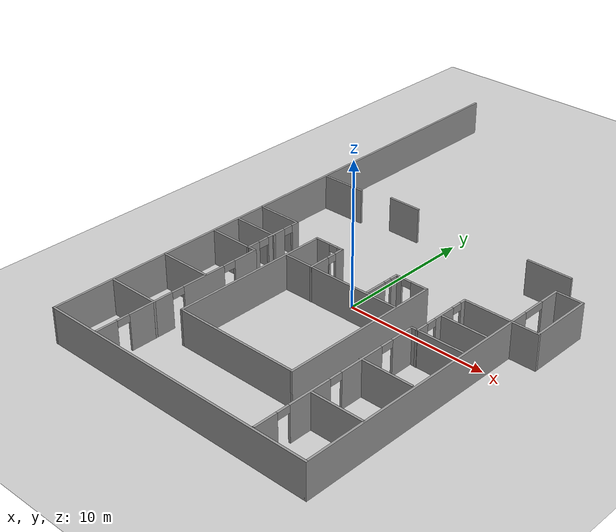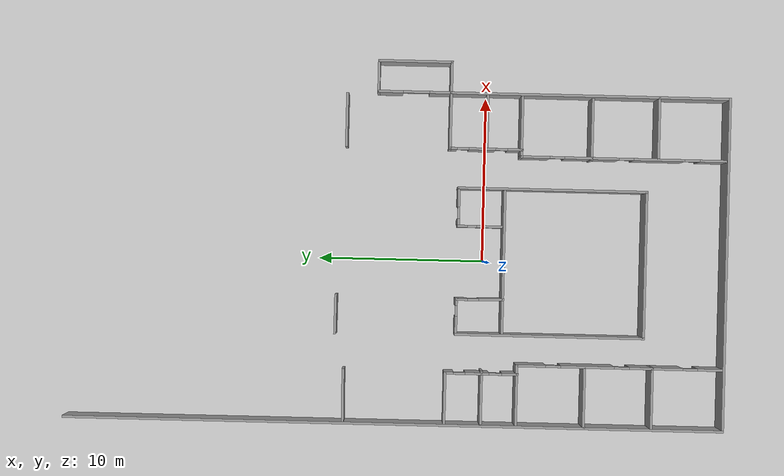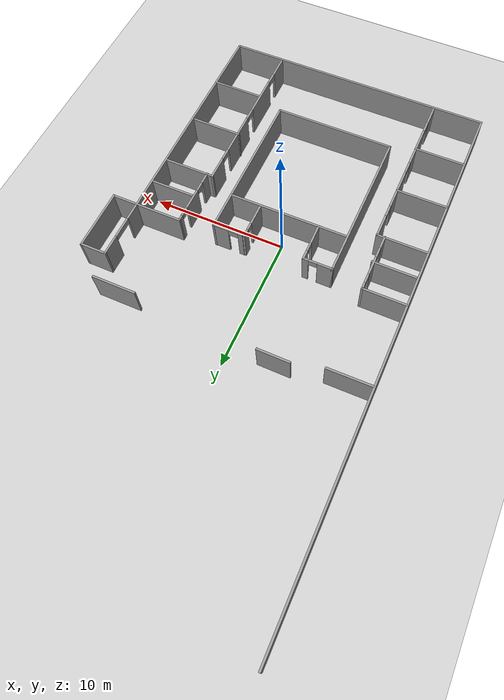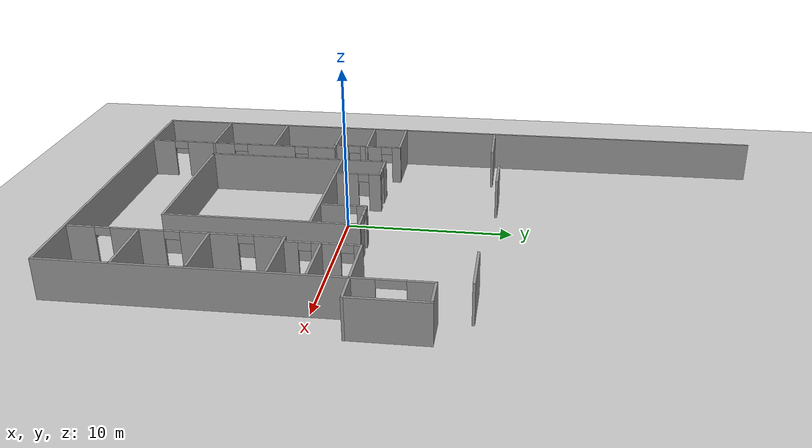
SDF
<sdf version="1.7">
 <world name="default">
  <model name="ground_plane">
   <static>1</static>
   <link name="link">
    <collision name="collision">
     <geometry><plane><normal>0 0 1</normal><size>100 100</size></plane></geometry>
     <surface><friction><ode><mu>100</mu><mu2>50</mu2></ode></friction></surface>
    </collision>
    <visual name="visual">
     <cast_shadows>0</cast_shadows>
     <geometry><plane><normal>0 0 1</normal><size>100 100</size></plane></geometry>
     <material>
      <script><uri>file://media/materials/scripts/gazebo.material</uri><name>Gazebo/Grey</name></script>
     </material>
    </visual>
   </link>
  </model>
  <model name="hospital_world">
   <pose>1.05255 5.28475 0 0 -0 0</pose>
   <link name="Wall_13">
    <collision name="Wall_13_Collision">
     <geometry><box><size>40 0.15 2.5</size></box></geometry>
     <pose>0 0 1.25 0 -0 0</pose>
    </collision>
    <visual name="Wall_13_Visual">
     <pose>0 0 1.25 0 -0 0</pose>
     <geometry><box><size>40 0.15 2.5</size></box></geometry>
     <material>
      <script><uri>file://media/materials/scripts/gazebo.material</uri><name>Gazebo/Grey</name></script>
      <ambient>1 1 1 1</ambient>
     </material>
     <meta><layer>0</layer></meta>
    </visual>
    <pose>-10.975 -0.021727 0 0 -0 -1.5708</pose>
   </link>
   <link name="Wall_14">
    <collision name="Wall_14_Collision">
     <geometry><box><size>20.25 0.15 2.5</size></box></geometry>
     <pose>0 0 1.25 0 -0 0</pose>
    </collision>
    <visual name="Wall_14_Visual">
     <pose>0 0 1.25 0 -0 0</pose>
     <geometry><box><size>20.25 0.15 2.5</size></box></geometry>
     <material>
      <script><uri>file://media/materials/scripts/gazebo.material</uri><name>Gazebo/Grey</name></script>
      <ambient>1 1 1 1</ambient>
     </material>
     <meta><layer>0</layer></meta>
    </visual>
    <pose>-0.924999 -19.9467 0 0 -0 0</pose>
   </link>
   <link name="Wall_140">
    <pose>-3.33273 -5.09193 0 0 -0 -1.55784</pose>
    <visual name="Wall_140_Visual_0">
     <pose>-1.10334 0 1.25 0 -0 0</pose>
     <geometry><box><size>0.735345 0.15 2.5</size></box></geometry>
     <material>
      <script><uri>file://media/materials/scripts/gazebo.material</uri><name>Gazebo/Grey</name></script>
      <ambient>1 1 1 1</ambient>
     </material>
     <meta><layer>0</layer></meta>
    </visual>
    <collision name="Wall_140_Collision_0">
     <geometry><box><size>0.735345 0.15 2.5</size></box></geometry>
     <pose>-1.10334 0 1.25 0 -0 0</pose>
    </collision>
    <visual name="Wall_140_Visual_1">
     <pose>0.701176 0 1.25 0 -0 0</pose>
     <geometry><box><size>1.53968 0.15 2.5</size></box></geometry>
     <material>
      <script><uri>file://media/materials/scripts/gazebo.material</uri><name>Gazebo/Grey</name></script>
      <ambient>1 1 1 1</ambient>
     </material>
     <meta><layer>0</layer></meta>
    </visual>
    <collision name="Wall_140_Collision_1">
     <geometry><box><size>1.53968 0.15 2.5</size></box></geometry>
     <pose>0.701176 0 1.25 0 -0 0</pose>
    </collision>
    <visual name="Wall_140_Visual_2">
     <pose>-0.402168 0 2.25 0 -0 0</pose>
     <geometry><box><size>0.667007 0.15 0.5</size></box></geometry>
     <material>
      <script><uri>file://media/materials/scripts/gazebo.material</uri><name>Gazebo/Grey</name></script>
      <ambient>1 1 1 1</ambient>
     </material>
     <meta><layer>0</layer></meta>
    </visual>
    <collision name="Wall_140_Collision_2">
     <geometry><box><size>0.667007 0.15 0.5</size></box></geometry>
     <pose>-0.402168 0 2.25 0 -0 0</pose>
    </collision>
   </link>
   <link name="Wall_142">
    <pose>1.08598 -5.01489 0 0 -0 -1.5708</pose>
    <visual name="Wall_142_Visual_0">
     <pose>-1.06401 0 1.25 0 -0 0</pose>
     <geometry><box><size>0.621972 0.15 2.5</size></box></geometry>
     <material>
      <script><uri>file://media/materials/scripts/gazebo.material</uri><name>Gazebo/Grey</name></script>
      <ambient>1 1 1 1</ambient>
     </material>
     <meta><layer>0</layer></meta>
    </visual>
    <collision name="Wall_142_Collision_0">
     <geometry><box><size>0.621972 0.15 2.5</size></box></geometry>
     <pose>-1.06401 0 1.25 0 -0 0</pose>
    </collision>
    <visual name="Wall_142_Visual_1">
     <pose>0.586521 0 1.25 0 -0 0</pose>
     <geometry><box><size>1.57696 0.15 2.5</size></box></geometry>
     <material>
      <script><uri>file://media/materials/scripts/gazebo.material</uri><name>Gazebo/Grey</name></script>
      <ambient>1 1 1 1</ambient>
     </material>
     <meta><layer>0</layer></meta>
    </visual>
    <collision name="Wall_142_Collision_1">
     <geometry><box><size>1.57696 0.15 2.5</size></box></geometry>
     <pose>0.586521 0 1.25 0 -0 0</pose>
    </collision>
    <visual name="Wall_142_Visual_2">
     <pose>-0.477493 0 2.25 0 -0 0</pose>
     <geometry><box><size>0.551071 0.15 0.5</size></box></geometry>
     <material>
      <script><uri>file://media/materials/scripts/gazebo.material</uri><name>Gazebo/Grey</name></script>
      <ambient>1 1 1 1</ambient>
     </material>
     <meta><layer>0</layer></meta>
    </visual>
    <collision name="Wall_142_Collision_2">
     <geometry><box><size>0.551071 0.15 0.5</size></box></geometry>
     <pose>-0.477493 0 2.25 0 -0 0</pose>
    </collision>
   </link>
   <link name="Wall_15">
    <collision name="Wall_15_Collision">
     <geometry><box><size>17 0.15 2.5</size></box></geometry>
     <pose>0 0 1.25 0 -0 0</pose>
    </collision>
    <visual name="Wall_15_Visual">
     <pose>0 0 1.25 0 -0 0</pose>
     <geometry><box><size>17 0.15 2.5</size></box></geometry>
     <material>
      <script><uri>file://media/materials/scripts/gazebo.material</uri><name>Gazebo/Grey</name></script>
      <ambient>1 1 1 1</ambient>
     </material>
     <meta><layer>0</layer></meta>
    </visual>
    <pose>9.125 -11.5217 0 0 -0 1.5708</pose>
   </link>
   <link name="Wall_150">
    <collision name="Wall_150_Collision">
     <geometry><box><size>2.4079 0.15 2.5</size></box></geometry>
     <pose>0 0 1.25 0 -0 0</pose>
    </collision>
    <visual name="Wall_150_Visual">
     <pose>0 0 1.25 0 -0 0</pose>
     <geometry><box><size>2.4079 0.15 2.5</size></box></geometry>
     <material>
      <script><uri>file://media/materials/scripts/gazebo.material</uri><name>Gazebo/Grey</name></script>
      <ambient>1 1 1 1</ambient>
     </material>
     <meta><layer>0</layer></meta>
    </visual>
    <pose>-4.4029 3.61271 0 0 -0 -0.004153</pose>
   </link>
   <link name="Wall_152">
    <collision name="Wall_152_Collision">
     <geometry><box><size>8.75 0.15 2.5</size></box></geometry>
     <pose>0 0 1.25 0 -0 0</pose>
    </collision>
    <visual name="Wall_152_Visual">
     <pose>0 0 1.25 0 -0 0</pose>
     <geometry><box><size>8.75 0.15 2.5</size></box></geometry>
     <material>
      <script><uri>file://media/materials/scripts/gazebo.material</uri><name>Gazebo/Grey</name></script>
      <ambient>1 1 1 1</ambient>
     </material>
     <meta><layer>0</layer></meta>
    </visual>
    <pose>-1.00117 -6.47614 0 0 -0 0</pose>
   </link>
   <link name="Wall_154">
    <pose>-4.40742 -3.68941 0 0 -0 0</pose>
    <visual name="Wall_154_Visual_0">
     <pose>-0.547357 0 1.25 0 -0 0</pose>
     <geometry><box><size>1.15529 0.15 2.5</size></box></geometry>
     <material>
      <script><uri>file://media/materials/scripts/gazebo.material</uri><name>Gazebo/Grey</name></script>
      <ambient>1 1 1 1</ambient>
     </material>
     <meta><layer>0</layer></meta>
    </visual>
    <collision name="Wall_154_Collision_0">
     <geometry><box><size>1.15529 0.15 2.5</size></box></geometry>
     <pose>-0.547357 0 1.25 0 -0 0</pose>
    </collision>
    <visual name="Wall_154_Visual_1">
     <pose>0.899702 0 1.25 0 -0 0</pose>
     <geometry><box><size>0.450596 0.15 2.5</size></box></geometry>
     <material>
      <script><uri>file://media/materials/scripts/gazebo.material</uri><name>Gazebo/Grey</name></script>
      <ambient>1 1 1 1</ambient>
     </material>
     <meta><layer>0</layer></meta>
    </visual>
    <collision name="Wall_154_Collision_1">
     <geometry><box><size>0.450596 0.15 2.5</size></box></geometry>
     <pose>0.899702 0 1.25 0 -0 0</pose>
    </collision>
    <visual name="Wall_154_Visual_2">
     <pose>0.352345 0 2.25 0 -0 0</pose>
     <geometry><box><size>0.644118 0.15 0.5</size></box></geometry>
     <material>
      <script><uri>file://media/materials/scripts/gazebo.material</uri><name>Gazebo/Grey</name></script>
      <ambient>1 1 1 1</ambient>
     </material>
     <meta><layer>0</layer></meta>
    </visual>
    <collision name="Wall_154_Collision_2">
     <geometry><box><size>0.644118 0.15 0.5</size></box></geometry>
     <pose>0.352345 0 2.25 0 -0 0</pose>
    </collision>
   </link>
   <link name="Wall_156">
    <pose>2.30006 -3.70371 0 0 -0 3.14159</pose>
    <visual name="Wall_156_Visual_0">
     <pose>-0.537944 0 1.25 0 -0 0</pose>
     <geometry><box><size>1.17411 0.15 2.5</size></box></geometry>
     <material>
      <script><uri>file://media/materials/scripts/gazebo.material</uri><name>Gazebo/Grey</name></script>
      <ambient>1 1 1 1</ambient>
     </material>
     <meta><layer>0</layer></meta>
    </visual>
    <collision name="Wall_156_Collision_0">
     <geometry><box><size>1.17411 0.15 2.5</size></box></geometry>
     <pose>-0.537944 0 1.25 0 -0 0</pose>
    </collision>
    <visual name="Wall_156_Visual_1">
     <pose>0.944008 0 1.25 0 -0 0</pose>
     <geometry><box><size>0.361984 0.15 2.5</size></box></geometry>
     <material>
      <script><uri>file://media/materials/scripts/gazebo.material</uri><name>Gazebo/Grey</name></script>
      <ambient>1 1 1 1</ambient>
     </material>
     <meta><layer>0</layer></meta>
    </visual>
    <collision name="Wall_156_Collision_1">
     <geometry><box><size>0.361984 0.15 2.5</size></box></geometry>
     <pose>0.944008 0 1.25 0 -0 0</pose>
    </collision>
    <visual name="Wall_156_Visual_2">
     <pose>0.406064 0 2.25 0 -0 0</pose>
     <geometry><box><size>0.713904 0.15 0.5</size></box></geometry>
     <material>
      <script><uri>file://media/materials/scripts/gazebo.material</uri><name>Gazebo/Grey</name></script>
      <ambient>1 1 1 1</ambient>
     </material>
     <meta><layer>0</layer></meta>
    </visual>
    <collision name="Wall_156_Collision_2">
     <geometry><box><size>0.713904 0.15 0.5</size></box></geometry>
     <pose>0.406064 0 2.25 0 -0 0</pose>
    </collision>
   </link>
   <link name="Wall_158">
    <pose>9.125 -0.896727 0 0 -0 -1.5708</pose>
    <visual name="Wall_158_Visual_0">
     <pose>-1.49805 0 1.25 0 -0 0</pose>
     <geometry><box><size>1.55389 0.15 2.5</size></box></geometry>
     <material>
      <script><uri>file://media/materials/scripts/gazebo.material</uri><name>Gazebo/Grey</name></script>
      <ambient>1 1 1 1</ambient>
     </material>
     <meta><layer>0</layer></meta>
    </visual>
    <collision name="Wall_158_Collision_0">
     <geometry><box><size>1.55389 0.15 2.5</size></box></geometry>
     <pose>-1.49805 0 1.25 0 -0 0</pose>
    </collision>
    <visual name="Wall_158_Visual_1">
     <pose>1.57587 0 1.25 0 -0 0</pose>
     <geometry><box><size>1.39825 0.15 2.5</size></box></geometry>
     <material>
      <script><uri>file://media/materials/scripts/gazebo.material</uri><name>Gazebo/Grey</name></script>
      <ambient>1 1 1 1</ambient>
     </material>
     <meta><layer>0</layer></meta>
    </visual>
    <collision name="Wall_158_Collision_1">
     <geometry><box><size>1.39825 0.15 2.5</size></box></geometry>
     <pose>1.57587 0 1.25 0 -0 0</pose>
    </collision>
    <visual name="Wall_158_Visual_2">
     <pose>0.07782 0 2.25 0 -0 0</pose>
     <geometry><box><size>1.59786 0.15 0.5</size></box></geometry>
     <material>
      <script><uri>file://media/materials/scripts/gazebo.material</uri><name>Gazebo/Grey</name></script>
      <ambient>1 1 1 1</ambient>
     </material>
     <meta><layer>0</layer></meta>
    </visual>
    <collision name="Wall_158_Collision_2">
     <geometry><box><size>1.59786 0.15 0.5</size></box></geometry>
     <pose>0.07782 0 2.25 0 -0 0</pose>
    </collision>
   </link>
   <link name="Wall_16">
    <collision name="Wall_16_Collision">
     <geometry><box><size>2 0.15 2.5</size></box></geometry>
     <pose>0 0 1.25 0 -0 0</pose>
    </collision>
    <visual name="Wall_16_Visual">
     <pose>0 0 1.25 0 -0 0</pose>
     <geometry><box><size>2 0.15 2.5</size></box></geometry>
     <material>
      <script><uri>file://media/materials/scripts/gazebo.material</uri><name>Gazebo/Grey</name></script>
      <ambient>1 1 1 1</ambient>
     </material>
     <meta><layer>0</layer></meta>
    </visual>
    <pose>10.05 -3.09673 0 0 -0 0</pose>
   </link>
   <link name="Wall_165">
    <collision name="Wall_165_Collision">
     <geometry><box><size>4.55 0.15 2.5</size></box></geometry>
     <pose>0 0 1.25 0 -0 0</pose>
    </collision>
    <visual name="Wall_165_Visual">
     <pose>0 0 1.25 0 -0 0</pose>
     <geometry><box><size>4.55 0.15 2.5</size></box></geometry>
     <material>
      <script><uri>file://media/materials/scripts/gazebo.material</uri><name>Gazebo/Grey</name></script>
      <ambient>1 1 1 1</ambient>
     </material>
     <meta><layer>0</layer></meta>
    </visual>
    <pose>10.975 -0.896727 0 0 -0 -1.5708</pose>
   </link>
   <link name="Wall_186">
    <collision name="Wall_186_Collision">
     <geometry><box><size>11.5 0.15 2.5</size></box></geometry>
     <pose>0 0 1.25 0 -0 0</pose>
    </collision>
    <visual name="Wall_186_Visual">
     <pose>0 0 1.25 0 -0 0</pose>
     <geometry><box><size>11.5 0.15 2.5</size></box></geometry>
     <material>
      <script><uri>file://media/materials/scripts/gazebo.material</uri><name>Gazebo/Grey</name></script>
      <ambient>1 1 1 1</ambient>
     </material>
     <meta><layer>0</layer></meta>
    </visual>
    <pose>-5.45742 -9.36441 0 0 -0 -1.5708</pose>
   </link>
   <link name="Wall_187">
    <collision name="Wall_187_Collision">
     <geometry><box><size>9 0.15 2.5</size></box></geometry>
     <pose>0 0 1.25 0 -0 0</pose>
    </collision>
    <visual name="Wall_187_Visual">
     <pose>0 0 1.25 0 -0 0</pose>
     <geometry><box><size>9 0.15 2.5</size></box></geometry>
     <material>
      <script><uri>file://media/materials/scripts/gazebo.material</uri><name>Gazebo/Grey</name></script>
      <ambient>1 1 1 1</ambient>
     </material>
     <meta><layer>0</layer></meta>
    </visual>
    <pose>-1.03242 -15.0394 0 0 -0 0</pose>
   </link>
   <link name="Wall_196">
    <collision name="Wall_196_Collision">
     <geometry><box><size>11.5 0.15 2.5</size></box></geometry>
     <pose>0 0 1.25 0 -0 0</pose>
    </collision>
    <visual name="Wall_196_Visual">
     <pose>0 0 1.25 0 -0 0</pose>
     <geometry><box><size>11.5 0.15 2.5</size></box></geometry>
     <material>
      <script><uri>file://media/materials/scripts/gazebo.material</uri><name>Gazebo/Grey</name></script>
      <ambient>1 1 1 1</ambient>
     </material>
     <meta><layer>0</layer></meta>
    </visual>
    <pose>3.39258 -9.36441 0 0 -0 1.5708</pose>
   </link>
   <link name="Wall_22">
    <collision name="Wall_22_Collision">
     <geometry><box><size>3.2502 0.15 2.5</size></box></geometry>
     <pose>0 0 1.25 0 -0 0</pose>
    </collision>
    <visual name="Wall_22_Visual">
     <pose>0 0 1.25 0 -0 0</pose>
     <geometry><box><size>3.2502 0.15 2.5</size></box></geometry>
     <material>
      <script><uri>file://media/materials/scripts/gazebo.material</uri><name>Gazebo/Grey</name></script>
      <ambient>1 1 1 1</ambient>
     </material>
     <meta><layer>0</layer></meta>
    </visual>
    <pose>-9.31807 3.046 0 0 -0 -3.13031</pose>
   </link>
   <link name="Wall_40">
    <collision name="Wall_40_Collision">
     <geometry><box><size>3.25 0.15 2.5</size></box></geometry>
     <pose>0 0 1.25 0 -0 0</pose>
    </collision>
    <visual name="Wall_40_Visual">
     <pose>0 0 1.25 0 -0 0</pose>
     <geometry><box><size>3.25 0.15 2.5</size></box></geometry>
     <material>
      <script><uri>file://media/materials/scripts/gazebo.material</uri><name>Gazebo/Grey</name></script>
      <ambient>1 1 1 1</ambient>
     </material>
     <meta><layer>0</layer></meta>
    </visual>
    <pose>7.37614 3.1742 0 0 -0 0</pose>
   </link>
   <link name="Wall_44">
    <collision name="Wall_44_Collision">
     <geometry><box><size>3.25 0.15 2.5</size></box></geometry>
     <pose>0 0 1.25 0 -0 0</pose>
    </collision>
    <visual name="Wall_44_Visual">
     <pose>0 0 1.25 0 -0 0</pose>
     <geometry><box><size>3.25 0.15 2.5</size></box></geometry>
     <material>
      <script><uri>file://media/materials/scripts/gazebo.material</uri><name>Gazebo/Grey</name></script>
      <ambient>1 1 1 1</ambient>
     </material>
     <meta><layer>0</layer></meta>
    </visual>
    <pose>-9.36509 -3.10623 0 0 -0 0</pose>
   </link>
   <link name="Wall_45">
    <pose>-7.81509 -5.28123 0 0 -0 -1.5708</pose>
    <visual name="Wall_45_Visual_0">
     <pose>-1.96621 0 1.25 0 -0 0</pose>
     <geometry><box><size>0.567587 0.15 2.5</size></box></geometry>
     <material>
      <script><uri>file://media/materials/scripts/gazebo.material</uri><name>Gazebo/Grey</name></script>
      <ambient>1 1 1 1</ambient>
     </material>
     <meta><layer>0</layer></meta>
    </visual>
    <collision name="Wall_45_Collision_0">
     <geometry><box><size>0.567587 0.15 2.5</size></box></geometry>
     <pose>-1.96621 0 1.25 0 -0 0</pose>
    </collision>
    <visual name="Wall_45_Visual_1">
     <pose>-0.247647 0 1.25 0 -0 0</pose>
     <geometry><box><size>1.43454 0.15 2.5</size></box></geometry>
     <material>
      <script><uri>file://media/materials/scripts/gazebo.material</uri><name>Gazebo/Grey</name></script>
      <ambient>1 1 1 1</ambient>
     </material>
     <meta><layer>0</layer></meta>
    </visual>
    <collision name="Wall_45_Collision_1">
     <geometry><box><size>1.43454 0.15 2.5</size></box></geometry>
     <pose>-0.247647 0 1.25 0 -0 0</pose>
    </collision>
    <visual name="Wall_45_Visual_2">
     <pose>1.74898 0 1.25 0 -0 0</pose>
     <geometry><box><size>1.00205 0.15 2.5</size></box></geometry>
     <material>
      <script><uri>file://media/materials/scripts/gazebo.material</uri><name>Gazebo/Grey</name></script>
      <ambient>1 1 1 1</ambient>
     </material>
     <meta><layer>0</layer></meta>
    </visual>
    <collision name="Wall_45_Collision_2">
     <geometry><box><size>1.00205 0.15 2.5</size></box></geometry>
     <pose>1.74898 0 1.25 0 -0 0</pose>
    </collision>
    <visual name="Wall_45_Visual_3">
     <pose>-1.32367 0 2.25 0 -0 0</pose>
     <geometry><box><size>0.717495 0.15 0.5</size></box></geometry>
     <material>
      <script><uri>file://media/materials/scripts/gazebo.material</uri><name>Gazebo/Grey</name></script>
      <ambient>1 1 1 1</ambient>
     </material>
     <meta><layer>0</layer></meta>
    </visual>
    <collision name="Wall_45_Collision_3">
     <geometry><box><size>0.717495 0.15 0.5</size></box></geometry>
     <pose>-1.32367 0 2.25 0 -0 0</pose>
    </collision>
    <visual name="Wall_45_Visual_4">
     <pose>0.85879 0 2.25 0 -0 0</pose>
     <geometry><box><size>0.77833 0.15 0.5</size></box></geometry>
     <material>
      <script><uri>file://media/materials/scripts/gazebo.material</uri><name>Gazebo/Grey</name></script>
      <ambient>1 1 1 1</ambient>
     </material>
     <meta><layer>0</layer></meta>
    </visual>
    <collision name="Wall_45_Collision_4">
     <geometry><box><size>0.77833 0.15 0.5</size></box></geometry>
     <pose>0.85879 0 2.25 0 -0 0</pose>
    </collision>
   </link>
   <link name="Wall_47">
    <collision name="Wall_47_Collision">
     <geometry><box><size>3.75 0.15 2.5</size></box></geometry>
     <pose>0 0 1.25 0 -0 0</pose>
    </collision>
    <visual name="Wall_47_Visual">
     <pose>0 0 1.25 0 -0 0</pose>
     <geometry><box><size>3.75 0.15 2.5</size></box></geometry>
     <material>
      <script><uri>file://media/materials/scripts/gazebo.material</uri><name>Gazebo/Grey</name></script>
      <ambient>1 1 1 1</ambient>
     </material>
     <meta><layer>0</layer></meta>
    </visual>
    <pose>-9.06857 -7.43295 0 0 -0 0</pose>
   </link>
   <link name="Wall_48">
    <pose>-7.26857 -13.608 0 0 -0 -1.5708</pose>
    <visual name="Wall_48_Visual_0">
     <pose>-5.34256 0 1.25 0 -0 0</pose>
     <geometry><box><size>1.81487 0.15 2.5</size></box></geometry>
     <material>
      <script><uri>file://media/materials/scripts/gazebo.material</uri><name>Gazebo/Grey</name></script>
      <ambient>1 1 1 1</ambient>
     </material>
     <meta><layer>0</layer></meta>
    </visual>
    <collision name="Wall_48_Collision_0">
     <geometry><box><size>1.81487 0.15 2.5</size></box></geometry>
     <pose>-5.34256 0 1.25 0 -0 0</pose>
    </collision>
    <visual name="Wall_48_Visual_1">
     <pose>-1.90914 0 1.25 0 -0 0</pose>
     <geometry><box><size>3.25199 0.15 2.5</size></box></geometry>
     <material>
      <script><uri>file://media/materials/scripts/gazebo.material</uri><name>Gazebo/Grey</name></script>
      <ambient>1 1 1 1</ambient>
     </material>
     <meta><layer>0</layer></meta>
    </visual>
    <collision name="Wall_48_Collision_1">
     <geometry><box><size>3.25199 0.15 2.5</size></box></geometry>
     <pose>-1.90914 0 1.25 0 -0 0</pose>
    </collision>
    <visual name="Wall_48_Visual_2">
     <pose>2.23525 0 1.25 0 -0 0</pose>
     <geometry><box><size>3.23678 0.15 2.5</size></box></geometry>
     <material>
      <script><uri>file://media/materials/scripts/gazebo.material</uri><name>Gazebo/Grey</name></script>
      <ambient>1 1 1 1</ambient>
     </material>
     <meta><layer>0</layer></meta>
    </visual>
    <collision name="Wall_48_Collision_2">
     <geometry><box><size>3.23678 0.15 2.5</size></box></geometry>
     <pose>2.23525 0 1.25 0 -0 0</pose>
    </collision>
    <visual name="Wall_48_Visual_3">
     <pose>5.50182 0 1.25 0 -0 0</pose>
     <geometry><box><size>1.49636 0.15 2.5</size></box></geometry>
     <material>
      <script><uri>file://media/materials/scripts/gazebo.material</uri><name>Gazebo/Grey</name></script>
      <ambient>1 1 1 1</ambient>
     </material>
     <meta><layer>0</layer></meta>
    </visual>
    <collision name="Wall_48_Collision_3">
     <geometry><box><size>1.49636 0.15 2.5</size></box></geometry>
     <pose>5.50182 0 1.25 0 -0 0</pose>
    </collision>
    <visual name="Wall_48_Visual_4">
     <pose>-3.98513 0 2.25 0 -0 0</pose>
     <geometry><box><size>0.9 0.15 0.5</size></box></geometry>
     <material>
      <script><uri>file://media/materials/scripts/gazebo.material</uri><name>Gazebo/Grey</name></script>
      <ambient>1 1 1 1</ambient>
     </material>
     <meta><layer>0</layer></meta>
    </visual>
    <collision name="Wall_48_Collision_4">
     <geometry><box><size>0.9 0.15 0.5</size></box></geometry>
     <pose>-3.98513 0 2.25 0 -0 0</pose>
    </collision>
    <visual name="Wall_48_Visual_5">
     <pose>0.166859 0 2.25 0 -0 0</pose>
     <geometry><box><size>0.9 0.15 0.5</size></box></geometry>
     <material>
      <script><uri>file://media/materials/scripts/gazebo.material</uri><name>Gazebo/Grey</name></script>
      <ambient>1 1 1 1</ambient>
     </material>
     <meta><layer>0</layer></meta>
    </visual>
    <collision name="Wall_48_Collision_5">
     <geometry><box><size>0.9 0.15 0.5</size></box></geometry>
     <pose>0.166859 0 2.25 0 -0 0</pose>
    </collision>
    <visual name="Wall_48_Visual_6">
     <pose>4.30364 0 2.25 0 -0 0</pose>
     <geometry><box><size>0.9 0.15 0.5</size></box></geometry>
     <material>
      <script><uri>file://media/materials/scripts/gazebo.material</uri><name>Gazebo/Grey</name></script>
      <ambient>1 1 1 1</ambient>
     </material>
     <meta><layer>0</layer></meta>
    </visual>
    <collision name="Wall_48_Collision_6">
     <geometry><box><size>0.9 0.15 0.5</size></box></geometry>
     <pose>4.30364 0 2.25 0 -0 0</pose>
    </collision>
   </link>
   <link name="Wall_50">
    <collision name="Wall_50_Collision">
     <geometry><box><size>3.75 0.15 2.5</size></box></geometry>
     <pose>0 0 1.25 0 -0 0</pose>
    </collision>
    <visual name="Wall_50_Visual">
     <pose>0 0 1.25 0 -0 0</pose>
     <geometry><box><size>3.75 0.15 2.5</size></box></geometry>
     <material>
      <script><uri>file://media/materials/scripts/gazebo.material</uri><name>Gazebo/Grey</name></script>
      <ambient>1 1 1 1</ambient>
     </material>
     <meta><layer>0</layer></meta>
    </visual>
    <pose>-9.11509 -11.5271 0 0 -0 0</pose>
   </link>
   <link name="Wall_52">
    <collision name="Wall_52_Collision">
     <geometry><box><size>3.75 0.15 2.5</size></box></geometry>
     <pose>0 0 1.25 0 -0 0</pose>
    </collision>
    <visual name="Wall_52_Visual">
     <pose>0 0 1.25 0 -0 0</pose>
     <geometry><box><size>3.75 0.15 2.5</size></box></geometry>
     <material>
      <script><uri>file://media/materials/scripts/gazebo.material</uri><name>Gazebo/Grey</name></script>
      <ambient>1 1 1 1</ambient>
     </material>
     <meta><layer>0</layer></meta>
    </visual>
    <pose>-9.06857 -15.6212 0 0 -0 0</pose>
   </link>
   <link name="Wall_54">
    <collision name="Wall_54_Collision">
     <geometry><box><size>3.25 0.15 2.5</size></box></geometry>
     <pose>0 0 1.25 0 -0 0</pose>
    </collision>
    <visual name="Wall_54_Visual">
     <pose>0 0 1.25 0 -0 0</pose>
     <geometry><box><size>3.25 0.15 2.5</size></box></geometry>
     <material>
      <script><uri>file://media/materials/scripts/gazebo.material</uri><name>Gazebo/Grey</name></script>
      <ambient>1 1 1 1</ambient>
     </material>
     <meta><layer>0</layer></meta>
    </visual>
    <pose>-9.2628 -5.30761 0 0 -0 0</pose>
   </link>
   <link name="Wall_56">
    <collision name="Wall_56_Collision">
     <geometry><box><size>3.5 0.15 2.5</size></box></geometry>
     <pose>0 0 1.25 0 -0 0</pose>
    </collision>
    <visual name="Wall_56_Visual">
     <pose>0 0 1.25 0 -0 0</pose>
     <geometry><box><size>3.5 0.15 2.5</size></box></geometry>
     <material>
      <script><uri>file://media/materials/scripts/gazebo.material</uri><name>Gazebo/Grey</name></script>
      <ambient>1 1 1 1</ambient>
     </material>
     <meta><layer>0</layer></meta>
    </visual>
    <pose>7.45 -3.09673 0 0 -0 3.14159</pose>
   </link>
   <link name="Wall_57">
    <pose>5.775 -5.27173 0 0 -0 -1.5708</pose>
    <visual name="Wall_57_Visual_0">
     <pose>-2.00479 0 1.25 0 -0 0</pose>
     <geometry><box><size>0.490419 0.15 2.5</size></box></geometry>
     <material>
      <script><uri>file://media/materials/scripts/gazebo.material</uri><name>Gazebo/Grey</name></script>
      <ambient>1 1 1 1</ambient>
     </material>
     <meta><layer>0</layer></meta>
    </visual>
    <collision name="Wall_57_Collision_0">
     <geometry><box><size>0.490419 0.15 2.5</size></box></geometry>
     <pose>-2.00479 0 1.25 0 -0 0</pose>
    </collision>
    <visual name="Wall_57_Visual_1">
     <pose>-0.22882 0 1.25 0 -0 0</pose>
     <geometry><box><size>1.61132 0.15 2.5</size></box></geometry>
     <material>
      <script><uri>file://media/materials/scripts/gazebo.material</uri><name>Gazebo/Grey</name></script>
      <ambient>1 1 1 1</ambient>
     </material>
     <meta><layer>0</layer></meta>
    </visual>
    <collision name="Wall_57_Collision_1">
     <geometry><box><size>1.61132 0.15 2.5</size></box></geometry>
     <pose>-0.22882 0 1.25 0 -0 0</pose>
    </collision>
    <visual name="Wall_57_Visual_2">
     <pose>1.77293 0 1.25 0 -0 0</pose>
     <geometry><box><size>0.954144 0.15 2.5</size></box></geometry>
     <material>
      <script><uri>file://media/materials/scripts/gazebo.material</uri><name>Gazebo/Grey</name></script>
      <ambient>1 1 1 1</ambient>
     </material>
     <meta><layer>0</layer></meta>
    </visual>
    <collision name="Wall_57_Collision_2">
     <geometry><box><size>0.954144 0.15 2.5</size></box></geometry>
     <pose>1.77293 0 1.25 0 -0 0</pose>
    </collision>
    <visual name="Wall_57_Visual_3">
     <pose>-1.39703 0 2.25 0 -0 0</pose>
     <geometry><box><size>0.725099 0.15 0.5</size></box></geometry>
     <material>
      <script><uri>file://media/materials/scripts/gazebo.material</uri><name>Gazebo/Grey</name></script>
      <ambient>1 1 1 1</ambient>
     </material>
     <meta><layer>0</layer></meta>
    </visual>
    <collision name="Wall_57_Collision_3">
     <geometry><box><size>0.725099 0.15 0.5</size></box></geometry>
     <pose>-1.39703 0 2.25 0 -0 0</pose>
    </collision>
    <visual name="Wall_57_Visual_4">
     <pose>0.936348 0 2.25 0 -0 0</pose>
     <geometry><box><size>0.719016 0.15 0.5</size></box></geometry>
     <material>
      <script><uri>file://media/materials/scripts/gazebo.material</uri><name>Gazebo/Grey</name></script>
      <ambient>1 1 1 1</ambient>
     </material>
     <meta><layer>0</layer></meta>
    </visual>
    <collision name="Wall_57_Collision_4">
     <geometry><box><size>0.719016 0.15 0.5</size></box></geometry>
     <pose>0.936348 0 2.25 0 -0 0</pose>
    </collision>
   </link>
   <link name="Wall_61">
    <collision name="Wall_61_Collision">
     <geometry><box><size>3.75 0.15 2.5</size></box></geometry>
     <pose>0 0 1.25 0 -0 0</pose>
    </collision>
    <visual name="Wall_61_Visual">
     <pose>0 0 1.25 0 -0 0</pose>
     <geometry><box><size>3.75 0.15 2.5</size></box></geometry>
     <material>
      <script><uri>file://media/materials/scripts/gazebo.material</uri><name>Gazebo/Grey</name></script>
      <ambient>1 1 1 1</ambient>
     </material>
     <meta><layer>0</layer></meta>
    </visual>
    <pose>7.16258 -7.41664 0 0 -0 3.14159</pose>
   </link>
   <link name="Wall_62">
    <pose>5.36258 -13.5916 0 0 -0 -1.5708</pose>
    <visual name="Wall_62_Visual_0">
     <pose>-5.35723 0 1.25 0 -0 0</pose>
     <geometry><box><size>1.78555 0.15 2.5</size></box></geometry>
     <material>
      <script><uri>file://media/materials/scripts/gazebo.material</uri><name>Gazebo/Grey</name></script>
      <ambient>1 1 1 1</ambient>
     </material>
     <meta><layer>0</layer></meta>
    </visual>
    <collision name="Wall_62_Collision_0">
     <geometry><box><size>1.78555 0.15 2.5</size></box></geometry>
     <pose>-5.35723 0 1.25 0 -0 0</pose>
    </collision>
    <visual name="Wall_62_Visual_1">
     <pose>-1.92325 0 1.25 0 -0 0</pose>
     <geometry><box><size>3.28241 0.15 2.5</size></box></geometry>
     <material>
      <script><uri>file://media/materials/scripts/gazebo.material</uri><name>Gazebo/Grey</name></script>
      <ambient>1 1 1 1</ambient>
     </material>
     <meta><layer>0</layer></meta>
    </visual>
    <collision name="Wall_62_Collision_1">
     <geometry><box><size>3.28241 0.15 2.5</size></box></geometry>
     <pose>-1.92325 0 1.25 0 -0 0</pose>
    </collision>
    <visual name="Wall_62_Visual_2">
     <pose>2.1603 0 1.25 0 -0 0</pose>
     <geometry><box><size>3.08469 0.15 2.5</size></box></geometry>
     <material>
      <script><uri>file://media/materials/scripts/gazebo.material</uri><name>Gazebo/Grey</name></script>
      <ambient>1 1 1 1</ambient>
     </material>
     <meta><layer>0</layer></meta>
    </visual>
    <collision name="Wall_62_Collision_2">
     <geometry><box><size>3.08469 0.15 2.5</size></box></geometry>
     <pose>2.1603 0 1.25 0 -0 0</pose>
    </collision>
    <visual name="Wall_62_Visual_3">
     <pose>5.42632 0 1.25 0 -0 0</pose>
     <geometry><box><size>1.64735 0.15 2.5</size></box></geometry>
     <material>
      <script><uri>file://media/materials/scripts/gazebo.material</uri><name>Gazebo/Grey</name></script>
      <ambient>1 1 1 1</ambient>
     </material>
     <meta><layer>0</layer></meta>
    </visual>
    <collision name="Wall_62_Collision_3">
     <geometry><box><size>1.64735 0.15 2.5</size></box></geometry>
     <pose>5.42632 0 1.25 0 -0 0</pose>
    </collision>
    <visual name="Wall_62_Visual_4">
     <pose>-4.01445 0 2.25 0 -0 0</pose>
     <geometry><box><size>0.9 0.15 0.5</size></box></geometry>
     <material>
      <script><uri>file://media/materials/scripts/gazebo.material</uri><name>Gazebo/Grey</name></script>
      <ambient>1 1 1 1</ambient>
     </material>
     <meta><layer>0</layer></meta>
    </visual>
    <collision name="Wall_62_Collision_4">
     <geometry><box><size>0.9 0.15 0.5</size></box></geometry>
     <pose>-4.01445 0 2.25 0 -0 0</pose>
    </collision>
    <visual name="Wall_62_Visual_5">
     <pose>0.167955 0 2.25 0 -0 0</pose>
     <geometry><box><size>0.9 0.15 0.5</size></box></geometry>
     <material>
      <script><uri>file://media/materials/scripts/gazebo.material</uri><name>Gazebo/Grey</name></script>
      <ambient>1 1 1 1</ambient>
     </material>
     <meta><layer>0</layer></meta>
    </visual>
    <collision name="Wall_62_Collision_5">
     <geometry><box><size>0.9 0.15 0.5</size></box></geometry>
     <pose>0.167955 0 2.25 0 -0 0</pose>
    </collision>
    <visual name="Wall_62_Visual_6">
     <pose>4.15265 0 2.25 0 -0 0</pose>
     <geometry><box><size>0.9 0.15 0.5</size></box></geometry>
     <material>
      <script><uri>file://media/materials/scripts/gazebo.material</uri><name>Gazebo/Grey</name></script>
      <ambient>1 1 1 1</ambient>
     </material>
     <meta><layer>0</layer></meta>
    </visual>
    <collision name="Wall_62_Collision_6">
     <geometry><box><size>0.9 0.15 0.5</size></box></geometry>
     <pose>4.15265 0 2.25 0 -0 0</pose>
    </collision>
   </link>
   <link name="Wall_64">
    <collision name="Wall_64_Collision">
     <geometry><box><size>3.75 0.15 2.5</size></box></geometry>
     <pose>0 0 1.25 0 -0 0</pose>
    </collision>
    <visual name="Wall_64_Visual">
     <pose>0 0 1.25 0 -0 0</pose>
     <geometry><box><size>3.75 0.15 2.5</size></box></geometry>
     <material>
      <script><uri>file://media/materials/scripts/gazebo.material</uri><name>Gazebo/Grey</name></script>
      <ambient>1 1 1 1</ambient>
     </material>
     <meta><layer>0</layer></meta>
    </visual>
    <pose>7.09952 -11.6669 0 0 -0 0</pose>
   </link>
   <link name="Wall_66">
    <collision name="Wall_66_Collision">
     <geometry><box><size>3.75 0.15 2.5</size></box></geometry>
     <pose>0 0 1.25 0 -0 0</pose>
    </collision>
    <visual name="Wall_66_Visual">
     <pose>0 0 1.25 0 -0 0</pose>
     <geometry><box><size>3.75 0.15 2.5</size></box></geometry>
     <material>
      <script><uri>file://media/materials/scripts/gazebo.material</uri><name>Gazebo/Grey</name></script>
      <ambient>1 1 1 1</ambient>
     </material>
     <meta><layer>0</layer></meta>
    </visual>
    <pose>7.26207 -15.6896 0 0 -0 0</pose>
   </link>
   <link name="Wall_68">
    <collision name="Wall_68_Collision">
     <geometry><box><size>3.25 0.15 2.5</size></box></geometry>
     <pose>0 0 1.25 0 -0 0</pose>
    </collision>
    <visual name="Wall_68_Visual">
     <pose>0 0 1.25 0 -0 0</pose>
     <geometry><box><size>3.25 0.15 2.5</size></box></geometry>
     <material>
      <script><uri>file://media/materials/scripts/gazebo.material</uri><name>Gazebo/Grey</name></script>
      <ambient>1 1 1 1</ambient>
     </material>
     <meta><layer>0</layer></meta>
    </visual>
    <pose>7.4843 -5.31802 0 0 -0 0</pose>
   </link>
   <link name="Wall_7">
    <collision name="Wall_7_Collision">
     <geometry><box><size>2 0.15 2.5</size></box></geometry>
     <pose>0 0 1.25 0 -0 0</pose>
    </collision>
    <visual name="Wall_7_Visual">
     <pose>0 0 1.25 0 -0 0</pose>
     <geometry><box><size>2 0.15 2.5</size></box></geometry>
     <material>
      <script><uri>file://media/materials/scripts/gazebo.material</uri><name>Gazebo/Grey</name></script>
      <ambient>1 1 1 1</ambient>
     </material>
     <meta><layer>0</layer></meta>
    </visual>
    <pose>10.05 1.30327 0 0 -0 0</pose>
   </link>
   <static>1</static>
  </model>
 </world>
</sdf>
